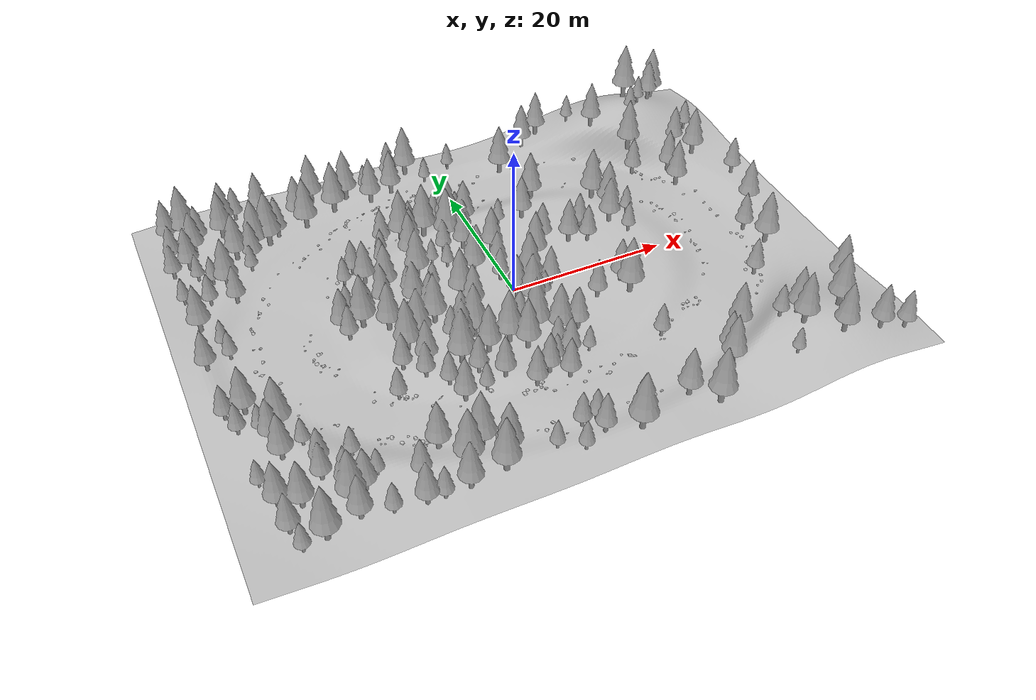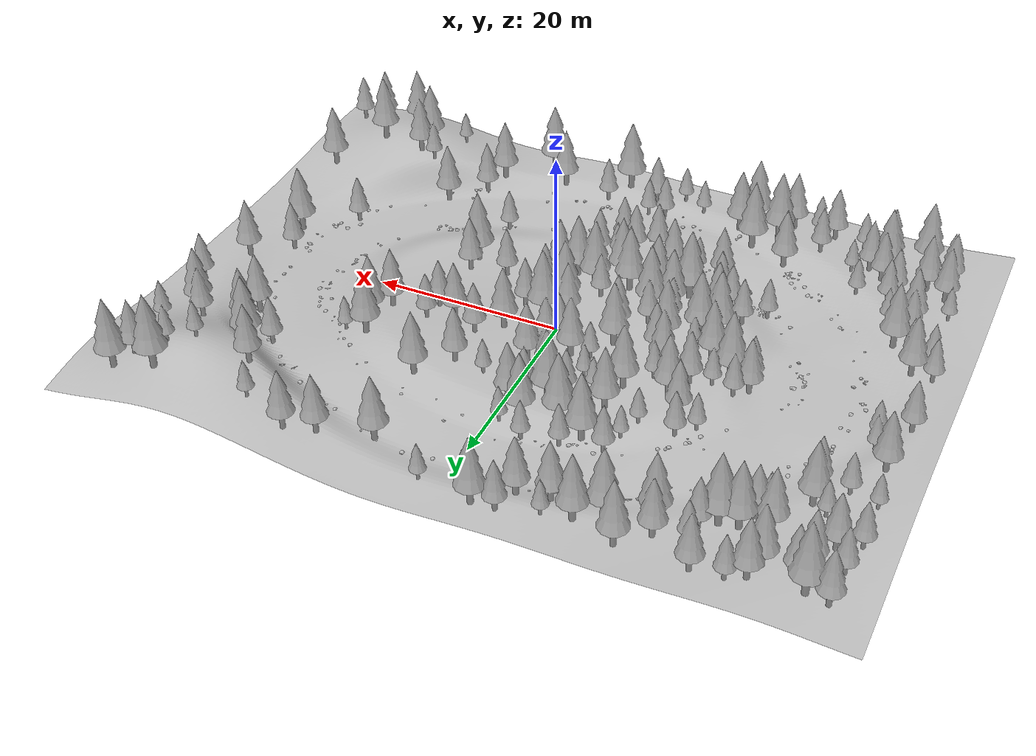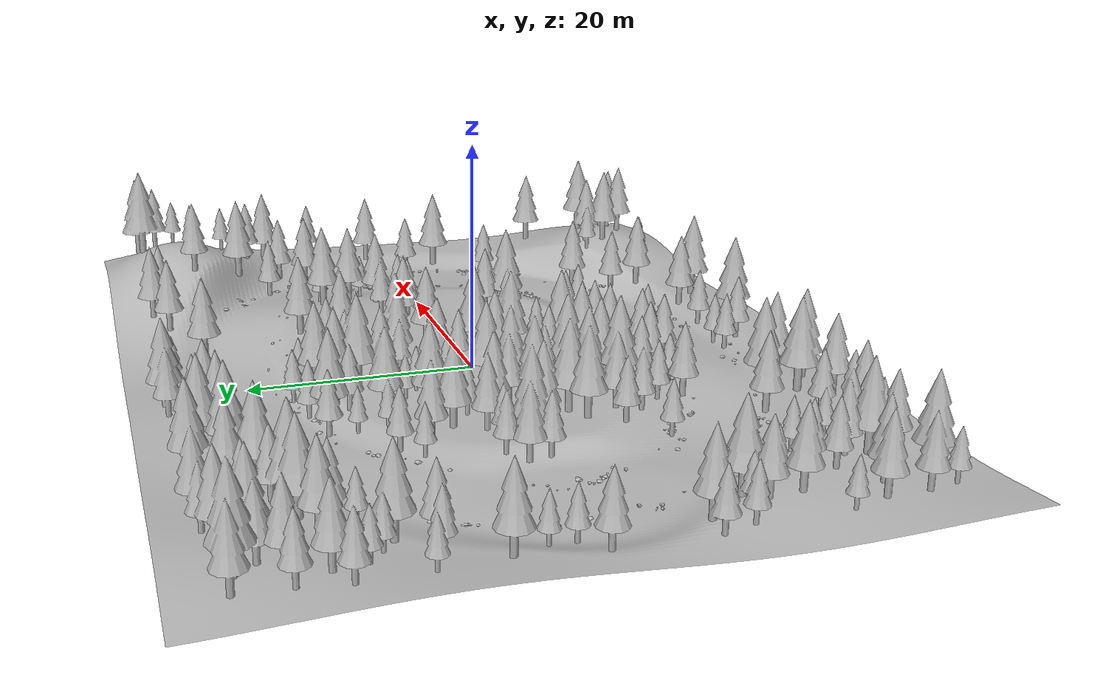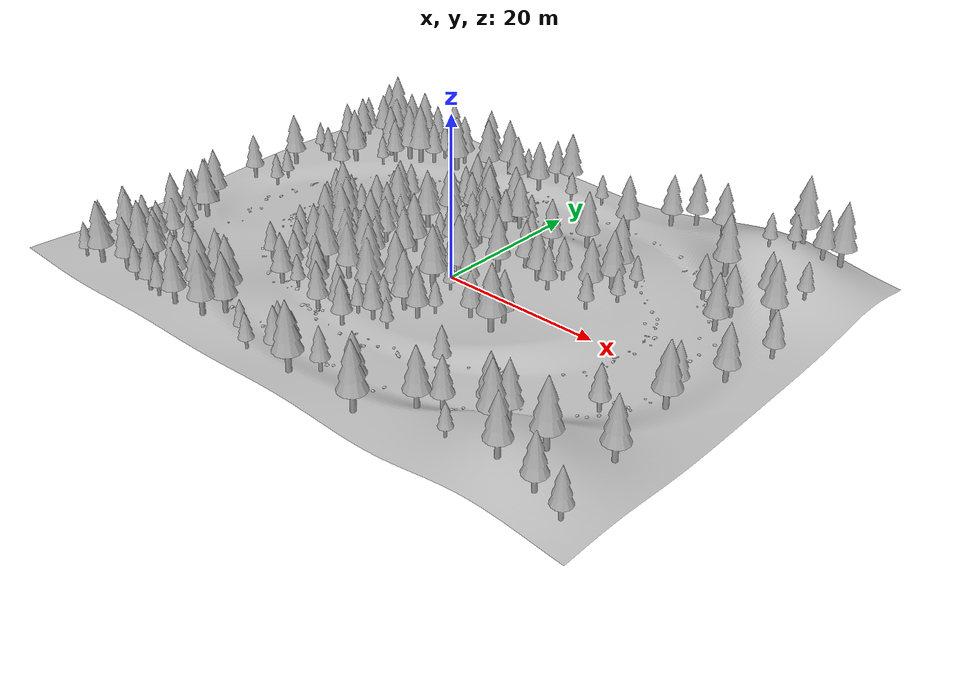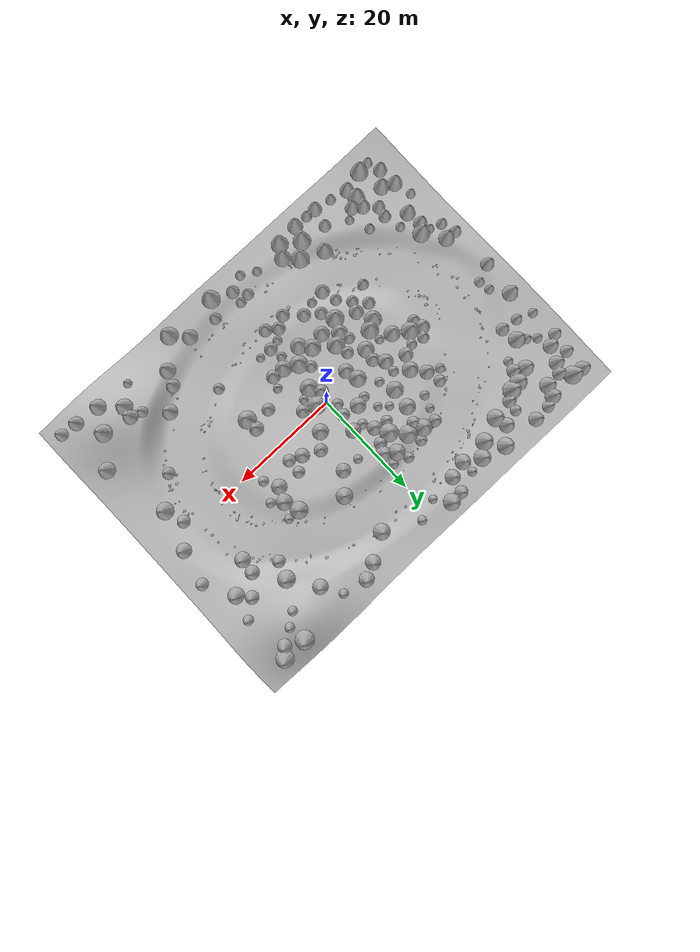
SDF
<sdf version="1.9">
 <world name="nomad_forest">
  <model name="terrain">
   <static>true</static>
   <link name="link">
    <visual name="visual">
     <geometry><mesh><uri>../assets/geometry/terrain.obj</uri><scale>1 1 1</scale></mesh></geometry>
    </visual>
    <collision name="rock">
     <geometry><mesh><uri>../assets/geometry/terrain.obj</uri><scale>1 1 1</scale></mesh></geometry>
    </collision>
   </link>
  </model>
  <model name="tree_007">
   <static>true</static>
   <pose>-6.293588800439682 13.55242502400182 0.8007505266098273 0 0 0.8162940006053361</pose>
   <link name="link">
    <visual name="visual">
     <geometry>
      <mesh>
       <uri>../assets/models/pine_tree.obj</uri>
       <scale>1.7989688896494025 1.7989688896494025 1.7989688896494025</scale>
      </mesh>
     </geometry>
    </visual>
    <collision name="trunk">
     <pose>0 0 2.8783502234390443 0 0 0</pose>
     <geometry>
      <cylinder><radius>0.35979377792988054</radius><length>5.756700446878089</length></cylinder>
     </geometry>
    </collision>
   </link>
  </model>
  <model name="tree_025">
   <static>true</static>
   <pose>-13.276341670110689 -11.89721545183179 0.7928453746427766 0 0 3.922718837163446</pose>
   <link name="link">
    <visual name="visual">
     <geometry>
      <mesh>
       <uri>../assets/models/pine_tree.obj</uri>
       <scale>1.1458944786385494 1.1458944786385494 1.1458944786385494</scale>
      </mesh>
     </geometry>
    </visual>
    <collision name="trunk">
     <pose>0 0 1.833431165821679 0 0 0</pose>
     <geometry>
      <cylinder><radius>0.22917889572770989</radius><length>3.666862331643358</length></cylinder>
     </geometry>
    </collision>
   </link>
  </model>
  <model name="tree_026">
   <static>true</static>
   <pose>-17.65965859949798 -19.472591499583118 0.47760870097271657 0 0 1.5537920347137826</pose>
   <link name="link">
    <visual name="visual">
     <geometry>
      <mesh>
       <uri>../assets/models/pine_tree.obj</uri>
       <scale>1.55673858618915 1.55673858618915 1.55673858618915</scale>
      </mesh>
     </geometry>
    </visual>
    <collision name="trunk">
     <pose>0 0 2.4907817379026405 0 0 0</pose>
     <geometry>
      <cylinder><radius>0.31134771723783006</radius><length>4.981563475805281</length></cylinder>
     </geometry>
    </collision>
   </link>
  </model>
  <model name="tree_030">
   <static>true</static>
   <pose>-6.838054801052387 24.097928054166218 0.6409375628328468 0 0 1.8420546594271203</pose>
   <link name="link">
    <visual name="visual">
     <geometry>
      <mesh>
       <uri>../assets/models/pine_tree.obj</uri>
       <scale>1.5101867661153476 1.5101867661153476 1.5101867661153476</scale>
      </mesh>
     </geometry>
    </visual>
    <collision name="trunk">
     <pose>0 0 2.4162988257845566 0 0 0</pose>
     <geometry>
      <cylinder><radius>0.30203735322306957</radius><length>4.832597651569113</length></cylinder>
     </geometry>
    </collision>
   </link>
  </model>
  <model name="tree_035">
   <static>true</static>
   <pose>-0.6944197450645646 -16.28772859136997 0.6846292504664656 0 0 5.097573754092246</pose>
   <link name="link">
    <visual name="visual">
     <geometry>
      <mesh>
       <uri>../assets/models/pine_tree.obj</uri>
       <scale>1.31694152696172 1.31694152696172 1.31694152696172</scale>
      </mesh>
     </geometry>
    </visual>
    <collision name="trunk">
     <pose>0 0 2.107106443138752 0 0 0</pose>
     <geometry><cylinder><radius>0.263388305392344</radius><length>4.214212886277504</length></cylinder></geometry>
    </collision>
   </link>
  </model>
  <model name="tree_039">
   <static>true</static>
   <pose>-2.5717278783547712 -14.939464476773919 0.9371561032422369 0 0 5.153898931738391</pose>
   <link name="link">
    <visual name="visual">
     <geometry>
      <mesh>
       <uri>../assets/models/pine_tree.obj</uri>
       <scale>1.3302403800585585 1.3302403800585585 1.3302403800585585</scale>
      </mesh>
     </geometry>
    </visual>
    <collision name="trunk">
     <pose>0 0 2.1283846080936937 0 0 0</pose>
     <geometry>
      <cylinder><radius>0.2660480760117117</radius><length>4.256769216187387</length></cylinder>
     </geometry>
    </collision>
   </link>
  </model>
  <model name="tree_040">
   <static>true</static>
   <pose>-1.1061359489396452 -25.091046535095707 0.8661596419446858 0 0 3.356134354959896</pose>
   <link name="link">
    <visual name="visual">
     <geometry>
      <mesh>
       <uri>../assets/models/pine_tree.obj</uri>
       <scale>1.2975089270482345 1.2975089270482345 1.2975089270482345</scale>
      </mesh>
     </geometry>
    </visual>
    <collision name="trunk">
     <pose>0 0 2.0760142832771753 0 0 0</pose>
     <geometry>
      <cylinder><radius>0.2595017854096469</radius><length>4.152028566554351</length></cylinder>
     </geometry>
    </collision>
   </link>
  </model>
  <model name="tree_047">
   <static>true</static>
   <pose>-13.536181052587096 -21.21866772276849 0.7080946075535787 0 0 3.372255730874749</pose>
   <link name="link">
    <visual name="visual">
     <geometry>
      <mesh>
       <uri>../assets/models/pine_tree.obj</uri>
       <scale>1.8033204049654459 1.8033204049654459 1.8033204049654459</scale>
      </mesh>
     </geometry>
    </visual>
    <collision name="trunk">
     <pose>0 0 2.8853126479447138 0 0 0</pose>
     <geometry>
      <cylinder><radius>0.3606640809930892</radius><length>5.7706252958894275</length></cylinder>
     </geometry>
    </collision>
   </link>
  </model>
  <model name="tree_051">
   <static>true</static>
   <pose>25.248967756138725 17.21050427596017 2.7728254936335675 0 0 4.054797229250412</pose>
   <link name="link">
    <visual name="visual">
     <geometry>
      <mesh>
       <uri>../assets/models/pine_tree.obj</uri>
       <scale>1.7249098421022357 1.7249098421022357 1.7249098421022357</scale>
      </mesh>
     </geometry>
    </visual>
    <collision name="trunk">
     <pose>0 0 2.759855747363577 0 0 0</pose>
     <geometry>
      <cylinder><radius>0.34498196842044715</radius><length>5.519711494727154</length></cylinder>
     </geometry>
    </collision>
   </link>
  </model>
  <model name="tree_065">
   <static>true</static>
   <pose>24.457651218509476 14.278219807285602 0.7009766329042418 0 0 5.3257457272270825</pose>
   <link name="link">
    <visual name="visual">
     <geometry>
      <mesh>
       <uri>../assets/models/pine_tree.obj</uri>
       <scale>1.2717046956988256 1.2717046956988256 1.2717046956988256</scale>
      </mesh>
     </geometry>
    </visual>
    <collision name="trunk">
     <pose>0 0 2.034727513118121 0 0 0</pose>
     <geometry>
      <cylinder><radius>0.25434093913976513</radius><length>4.069455026236242</length></cylinder>
     </geometry>
    </collision>
   </link>
  </model>
  <model name="tree_069">
   <static>true</static>
   <pose>-1.1114009333897954 15.636129962233149 0.5721477040604617 0 0 3.1060984069651902</pose>
   <link name="link">
    <visual name="visual">
     <geometry>
      <mesh>
       <uri>../assets/models/pine_tree.obj</uri>
       <scale>0.9391842858547345 0.9391842858547345 0.9391842858547345</scale>
      </mesh>
     </geometry>
    </visual>
    <collision name="trunk">
     <pose>0 0 1.5026948573675751 0 0 0</pose>
     <geometry>
      <cylinder><radius>0.1878368571709469</radius><length>3.0053897147351503</length></cylinder>
     </geometry>
    </collision>
   </link>
  </model>
  <model name="tree_072">
   <static>true</static>
   <pose>-16.770473143734264 10.652227281919778 0.36253165502038964 0 0 3.325448024082017</pose>
   <link name="link">
    <visual name="visual">
     <geometry>
      <mesh>
       <uri>../assets/models/pine_tree.obj</uri>
       <scale>1.1987599998118583 1.1987599998118583 1.1987599998118583</scale>
      </mesh>
     </geometry>
    </visual>
    <collision name="trunk">
     <pose>0 0 1.9180159996989734 0 0 0</pose>
     <geometry>
      <cylinder><radius>0.23975199996237168</radius><length>3.836031999397947</length></cylinder>
     </geometry>
    </collision>
   </link>
  </model>
  <model name="tree_075">
   <static>true</static>
   <pose>28.2225630124111 -9.554475139353482 -0.1421955524333917 0 0 5.602045413154341</pose>
   <link name="link">
    <visual name="visual">
     <geometry>
      <mesh>
       <uri>../assets/models/pine_tree.obj</uri>
       <scale>1.2480439982903286 1.2480439982903286 1.2480439982903286</scale>
      </mesh>
     </geometry>
    </visual>
    <collision name="trunk">
     <pose>0 0 1.9968703972645259 0 0 0</pose>
     <geometry>
      <cylinder><radius>0.24960879965806573</radius><length>3.9937407945290517</length></cylinder>
     </geometry>
    </collision>
   </link>
  </model>
  <model name="tree_077">
   <static>true</static>
   <pose>-18.361296366333363 9.103025834376098 0.39481014141068205 0 0 3.0501125574067327</pose>
   <link name="link">
    <visual name="visual">
     <geometry>
      <mesh>
       <uri>../assets/models/pine_tree.obj</uri>
       <scale>0.9926797807486402 0.9926797807486402 0.9926797807486402</scale>
      </mesh>
     </geometry>
    </visual>
    <collision name="trunk">
     <pose>0 0 1.5882876491978244 0 0 0</pose>
     <geometry>
      <cylinder><radius>0.19853595614972805</radius><length>3.176575298395649</length></cylinder>
     </geometry>
    </collision>
   </link>
  </model>
  <model name="tree_078">
   <static>true</static>
   <pose>-9.900320157292139 -14.401477858635333 0.8857124431410559 0 0 0.6427639457512218</pose>
   <link name="link">
    <visual name="visual">
     <geometry>
      <mesh>
       <uri>../assets/models/pine_tree.obj</uri>
       <scale>0.952438705476013 0.952438705476013 0.952438705476013</scale>
      </mesh>
     </geometry>
    </visual>
    <collision name="trunk">
     <pose>0 0 1.523901928761621 0 0 0</pose>
     <geometry>
      <cylinder><radius>0.1904877410952026</radius><length>3.047803857523242</length></cylinder>
     </geometry>
    </collision>
   </link>
  </model>
  <model name="tree_080">
   <static>true</static>
   <pose>-0.9724898220835385 -22.8911420694354 0.48623917429165425 0 0 2.4140685081277065</pose>
   <link name="link">
    <visual name="visual">
     <geometry>
      <mesh>
       <uri>../assets/models/pine_tree.obj</uri>
       <scale>1.0421492229770055 1.0421492229770055 1.0421492229770055</scale>
      </mesh>
     </geometry>
    </visual>
    <collision name="trunk">
     <pose>0 0 1.667438756763209 0 0 0</pose>
     <geometry>
      <cylinder><radius>0.20842984459540112</radius><length>3.334877513526418</length></cylinder>
     </geometry>
    </collision>
   </link>
  </model>
  <model name="tree_094">
   <static>true</static>
   <pose>-2.7662138534195293 14.512765500442583 0.8914661388534235 0 0 5.401350426669341</pose>
   <link name="link">
    <visual name="visual">
     <geometry>
      <mesh>
       <uri>../assets/models/pine_tree.obj</uri>
       <scale>1.6666037909532645 1.6666037909532645 1.6666037909532645</scale>
      </mesh>
     </geometry>
    </visual>
    <collision name="trunk">
     <pose>0 0 2.6665660655252235 0 0 0</pose>
     <geometry>
      <cylinder><radius>0.33332075819065293</radius><length>5.333132131050447</length></cylinder>
     </geometry>
    </collision>
   </link>
  </model>
  <model name="tree_100">
   <static>true</static>
   <pose>-2.8213500491230334 -23.10175073394997 0.5316661522117653 0 0 2.9509796798564474</pose>
   <link name="link">
    <visual name="visual">
     <geometry>
      <mesh>
       <uri>../assets/models/pine_tree.obj</uri>
       <scale>1.1534133446143469 1.1534133446143469 1.1534133446143469</scale>
      </mesh>
     </geometry>
    </visual>
    <collision name="trunk">
     <pose>0 0 1.845461351382955 0 0 0</pose>
     <geometry>
      <cylinder><radius>0.23068266892286937</radius><length>3.69092270276591</length></cylinder>
     </geometry>
    </collision>
   </link>
  </model>
  <model name="tree_104">
   <static>true</static>
   <pose>28.751849869676818 9.924569714537888 0.43422264244355135 0 0 3.1851830915829193</pose>
   <link name="link">
    <visual name="visual">
     <geometry>
      <mesh>
       <uri>../assets/models/pine_tree.obj</uri>
       <scale>1.5669524513801418 1.5669524513801418 1.5669524513801418</scale>
      </mesh>
     </geometry>
    </visual>
    <collision name="trunk">
     <pose>0 0 2.507123922208227 0 0 0</pose>
     <geometry>
      <cylinder><radius>0.3133904902760284</radius><length>5.014247844416454</length></cylinder>
     </geometry>
    </collision>
   </link>
  </model>
  <model name="tree_107">
   <static>true</static>
   <pose>17.496365396079497 -20.101052250353064 0.39404402331313226 0 0 1.1338845751314337</pose>
   <link name="link">
    <visual name="visual">
     <geometry>
      <mesh>
       <uri>../assets/models/pine_tree.obj</uri>
       <scale>1.3843335435280517 1.3843335435280517 1.3843335435280517</scale>
      </mesh>
     </geometry>
    </visual>
    <collision name="trunk">
     <pose>0 0 2.214933669644883 0 0 0</pose>
     <geometry>
      <cylinder><radius>0.27686670870561036</radius><length>4.429867339289766</length></cylinder>
     </geometry>
    </collision>
   </link>
  </model>
  <model name="tree_108">
   <static>true</static>
   <pose>-4.673912379977352 -16.11857310948409 0.9173448478450703 0 0 4.205197216302796</pose>
   <link name="link">
    <visual name="visual">
     <geometry>
      <mesh>
       <uri>../assets/models/pine_tree.obj</uri>
       <scale>1.3300202291052394 1.3300202291052394 1.3300202291052394</scale>
      </mesh>
     </geometry>
    </visual>
    <collision name="trunk">
     <pose>0 0 2.1280323665683833 0 0 0</pose>
     <geometry>
      <cylinder><radius>0.2660040458210479</radius><length>4.256064733136767</length></cylinder>
     </geometry>
    </collision>
   </link>
  </model>
  <model name="tree_109">
   <static>true</static>
   <pose>16.350984833224167 -22.434822562332542 1.2152132815893821 0 0 2.2077109779601747</pose>
   <link name="link">
    <visual name="visual">
     <geometry>
      <mesh>
       <uri>../assets/models/pine_tree.obj</uri>
       <scale>1.5861974616751477 1.5861974616751477 1.5861974616751477</scale>
      </mesh>
     </geometry>
    </visual>
    <collision name="trunk">
     <pose>0 0 2.5379159386802366 0 0 0</pose>
     <geometry>
      <cylinder><radius>0.31723949233502957</radius><length>5.075831877360473</length></cylinder>
     </geometry>
    </collision>
   </link>
  </model>
  <model name="tree_114">
   <static>true</static>
   <pose>-12.301881939422575 12.945647165655316 0.3383598516213291 0 0 2.4276722496816645</pose>
   <link name="link">
    <visual name="visual">
     <geometry>
      <mesh>
       <uri>../assets/models/pine_tree.obj</uri>
       <scale>0.8754748947221667 0.8754748947221667 0.8754748947221667</scale>
      </mesh>
     </geometry>
    </visual>
    <collision name="trunk">
     <pose>0 0 1.4007598315554668 0 0 0</pose>
     <geometry>
      <cylinder><radius>0.17509497894443335</radius><length>2.8015196631109336</length></cylinder>
     </geometry>
    </collision>
   </link>
  </model>
  <model name="tree_116">
   <static>true</static>
   <pose>18.34391992662364 10.233785066652338 1.522372054525186 0 0 1.4962436887757913</pose>
   <link name="link">
    <visual name="visual">
     <geometry>
      <mesh>
       <uri>../assets/models/pine_tree.obj</uri>
       <scale>0.9015878346819907 0.9015878346819907 0.9015878346819907</scale>
      </mesh>
     </geometry>
    </visual>
    <collision name="trunk">
     <pose>0 0 1.442540535491185 0 0 0</pose>
     <geometry>
      <cylinder><radius>0.18031756693639814</radius><length>2.88508107098237</length></cylinder>
     </geometry>
    </collision>
   </link>
  </model>
  <model name="tree_118">
   <static>true</static>
   <pose>4.214497332983825 -23.755848658581105 0.5907177686552141 0 0 2.435933843547309</pose>
   <link name="link">
    <visual name="visual">
     <geometry>
      <mesh>
       <uri>../assets/models/pine_tree.obj</uri>
       <scale>1.1882747736186925 1.1882747736186925 1.1882747736186925</scale>
      </mesh>
     </geometry>
    </visual>
    <collision name="trunk">
     <pose>0 0 1.9012396377899081 0 0 0</pose>
     <geometry>
      <cylinder><radius>0.23765495472373852</radius><length>3.8024792755798162</length></cylinder>
     </geometry>
    </collision>
   </link>
  </model>
  <model name="tree_120">
   <static>true</static>
   <pose>-9.919427201797852 23.42828917748814 0.5233286322261401 0 0 5.089609233991469</pose>
   <link name="link">
    <visual name="visual">
     <geometry>
      <mesh>
       <uri>../assets/models/pine_tree.obj</uri>
       <scale>1.550121981894094 1.550121981894094 1.550121981894094</scale>
      </mesh>
     </geometry>
    </visual>
    <collision name="trunk">
     <pose>0 0 2.4801951710305503 0 0 0</pose>
     <geometry>
      <cylinder><radius>0.3100243963788188</radius><length>4.960390342061101</length></cylinder>
     </geometry>
    </collision>
   </link>
  </model>
  <model name="tree_124">
   <static>true</static>
   <pose>12.074988859806325 -14.42589918851727 0.11758999165868661 0 0 3.5026901283701157</pose>
   <link name="link">
    <visual name="visual">
     <geometry>
      <mesh>
       <uri>../assets/models/pine_tree.obj</uri>
       <scale>1.1078354053719548 1.1078354053719548 1.1078354053719548</scale>
      </mesh>
     </geometry>
    </visual>
    <collision name="trunk">
     <pose>0 0 1.7725366485951277 0 0 0</pose>
     <geometry>
      <cylinder><radius>0.22156708107439096</radius><length>3.5450732971902554</length></cylinder>
     </geometry>
    </collision>
   </link>
  </model>
  <model name="tree_139">
   <static>true</static>
   <pose>-1.875117931666864 24.60243727265535 0.5796699866888116 0 0 0.02228610749726361</pose>
   <link name="link">
    <visual name="visual">
     <geometry>
      <mesh>
       <uri>../assets/models/pine_tree.obj</uri>
       <scale>0.8754748954382711 0.8754748954382711 0.8754748954382711</scale>
      </mesh>
     </geometry>
    </visual>
    <collision name="trunk">
     <pose>0 0 1.4007598327012338 0 0 0</pose>
     <geometry>
      <cylinder><radius>0.17509497908765423</radius><length>2.8015196654024677</length></cylinder>
     </geometry>
    </collision>
   </link>
  </model>
  <model name="tree_144">
   <static>true</static>
   <pose>-7.383037681972716 15.932795061696218 0.008968379253992756 0 0 2.983480610730356</pose>
   <link name="link">
    <visual name="visual">
     <geometry>
      <mesh>
       <uri>../assets/models/pine_tree.obj</uri>
       <scale>1.1275508866314268 1.1275508866314268 1.1275508866314268</scale>
      </mesh>
     </geometry>
    </visual>
    <collision name="trunk">
     <pose>0 0 1.804081418610283 0 0 0</pose>
     <geometry>
      <cylinder><radius>0.22551017732628537</radius><length>3.608162837220566</length></cylinder>
     </geometry>
    </collision>
   </link>
  </model>
  <model name="tree_148">
   <static>true</static>
   <pose>-7.343302468665485 -13.640190189029394 1.1682619906584892 0 0 1.9735704425010583</pose>
   <link name="link">
    <visual name="visual">
     <geometry>
      <mesh>
       <uri>../assets/models/pine_tree.obj</uri>
       <scale>1.3548106065326508 1.3548106065326508 1.3548106065326508</scale>
      </mesh>
     </geometry>
    </visual>
    <collision name="trunk">
     <pose>0 0 2.1676969704522415 0 0 0</pose>
     <geometry>
      <cylinder><radius>0.2709621213065302</radius><length>4.335393940904483</length></cylinder>
     </geometry>
    </collision>
   </link>
  </model>
  <model name="tree_151">
   <static>true</static>
   <pose>-11.380744848688852 -23.404847185497154 0.9872489706387149 0 0 3.581989815266369</pose>
   <link name="link">
    <visual name="visual">
     <geometry>
      <mesh>
       <uri>../assets/models/pine_tree.obj</uri>
       <scale>1.6466060610825708 1.6466060610825708 1.6466060610825708</scale>
      </mesh>
     </geometry>
    </visual>
    <collision name="trunk">
     <pose>0 0 2.6345696977321134 0 0 0</pose>
     <geometry>
      <cylinder><radius>0.32932121221651417</radius><length>5.269139395464227</length></cylinder>
     </geometry>
    </collision>
   </link>
  </model>
  <model name="tree_160">
   <static>true</static>
   <pose>-9.023421914254314 14.543629849972874 0.23866772326132862 0 0 0.6455605696202059</pose>
   <link name="link">
    <visual name="visual">
     <geometry>
      <mesh>
       <uri>../assets/models/pine_tree.obj</uri>
       <scale>1.76155614567804 1.76155614567804 1.76155614567804</scale>
      </mesh>
     </geometry>
    </visual>
    <collision name="trunk">
     <pose>0 0 2.8184898330848642 0 0 0</pose>
     <geometry>
      <cylinder><radius>0.35231122913560803</radius><length>5.6369796661697285</length></cylinder>
     </geometry>
    </collision>
   </link>
  </model>
  <model name="tree_166">
   <static>true</static>
   <pose>-6.688955291213464 -24.984804589735102 0.9258627684968768 0 0 4.110673129153881</pose>
   <link name="link">
    <visual name="visual">
     <geometry>
      <mesh>
       <uri>../assets/models/pine_tree.obj</uri>
       <scale>0.9360189261638309 0.9360189261638309 0.9360189261638309</scale>
      </mesh>
     </geometry>
    </visual>
    <collision name="trunk">
     <pose>0 0 1.4976302818621294 0 0 0</pose>
     <geometry>
      <cylinder><radius>0.18720378523276618</radius><length>2.995260563724259</length></cylinder>
     </geometry>
    </collision>
   </link>
  </model>
  <model name="tree_167">
   <static>true</static>
   <pose>15.996673173253711 10.313177564823377 1.9722138794428763 0 0 4.080049000838009</pose>
   <link name="link">
    <visual name="visual">
     <geometry>
      <mesh>
       <uri>../assets/models/pine_tree.obj</uri>
       <scale>1.7058053684853944 1.7058053684853944 1.7058053684853944</scale>
      </mesh>
     </geometry>
    </visual>
    <collision name="trunk">
     <pose>0 0 2.7292885895766315 0 0 0</pose>
     <geometry>
      <cylinder><radius>0.34116107369707893</radius><length>5.458577179153263</length></cylinder>
     </geometry>
    </collision>
   </link>
  </model>
  <model name="tree_173">
   <static>true</static>
   <pose>-12.502700017331392 -14.51735591329966 0.5137186061934924 0 0 5.659660308240993</pose>
   <link name="link">
    <visual name="visual">
     <geometry>
      <mesh>
       <uri>../assets/models/pine_tree.obj</uri>
       <scale>1.433883082825281 1.433883082825281 1.433883082825281</scale>
      </mesh>
     </geometry>
    </visual>
    <collision name="trunk">
     <pose>0 0 2.2942129325204497 0 0 0</pose>
     <geometry>
      <cylinder><radius>0.2867766165650562</radius><length>4.588425865040899</length></cylinder>
     </geometry>
    </collision>
   </link>
  </model>
  <model name="tree_180">
   <static>true</static>
   <pose>-18.803474803390625 -10.76345794323688 -0.11286317550703899 0 0 3.164573356038388</pose>
   <link name="link">
    <visual name="visual">
     <geometry>
      <mesh>
       <uri>../assets/models/pine_tree.obj</uri>
       <scale>1.0933875929630017 1.0933875929630017 1.0933875929630017</scale>
      </mesh>
     </geometry>
    </visual>
    <collision name="trunk">
     <pose>0 0 1.7494201487408028 0 0 0</pose>
     <geometry>
      <cylinder><radius>0.21867751859260035</radius><length>3.4988402974816055</length></cylinder>
     </geometry>
    </collision>
   </link>
  </model>
  <model name="tree_186">
   <static>true</static>
   <pose>-11.443931928611256 15.082205997048398 -0.008963105897041499 0 0 2.517811864487486</pose>
   <link name="link">
    <visual name="visual">
     <geometry>
      <mesh>
       <uri>../assets/models/pine_tree.obj</uri>
       <scale>1.2527596146383495 1.2527596146383495 1.2527596146383495</scale>
      </mesh>
     </geometry>
    </visual>
    <collision name="trunk">
     <pose>0 0 2.0044153834213594 0 0 0</pose>
     <geometry>
      <cylinder><radius>0.2505519229276699</radius><length>4.008830766842719</length></cylinder>
     </geometry>
    </collision>
   </link>
  </model>
  <model name="tree_188">
   <static>true</static>
   <pose>-14.954044696089333 23.382359815205568 0.6086177892012964 0 0 4.675497153707997</pose>
   <link name="link">
    <visual name="visual">
     <geometry>
      <mesh>
       <uri>../assets/models/pine_tree.obj</uri>
       <scale>1.7499453065696076 1.7499453065696076 1.7499453065696076</scale>
      </mesh>
     </geometry>
    </visual>
    <collision name="trunk">
     <pose>0 0 2.7999124905113724 0 0 0</pose>
     <geometry>
      <cylinder><radius>0.34998906131392155</radius><length>5.599824981022745</length></cylinder>
     </geometry>
    </collision>
   </link>
  </model>
  <model name="tree_190">
   <static>true</static>
   <pose>31.8405356845078 -1.7202492389860495 -0.016109725992784388 0 0 1.1564644276489</pose>
   <link name="link">
    <visual name="visual">
     <geometry>
      <mesh>
       <uri>../assets/models/pine_tree.obj</uri>
       <scale>1.3044044761263467 1.3044044761263467 1.3044044761263467</scale>
      </mesh>
     </geometry>
    </visual>
    <collision name="trunk">
     <pose>0 0 2.087047161802155 0 0 0</pose>
     <geometry>
      <cylinder><radius>0.26088089522526936</radius><length>4.17409432360431</length></cylinder>
     </geometry>
    </collision>
   </link>
  </model>
  <model name="tree_207">
   <static>true</static>
   <pose>8.32709815310934 22.546641655049065 0.41832688693377185 0 0 2.330838220396966</pose>
   <link name="link">
    <visual name="visual">
     <geometry>
      <mesh>
       <uri>../assets/models/pine_tree.obj</uri>
       <scale>1.6633031322146081 1.6633031322146081 1.6633031322146081</scale>
      </mesh>
     </geometry>
    </visual>
    <collision name="trunk">
     <pose>0 0 2.6612850115433733 0 0 0</pose>
     <geometry>
      <cylinder><radius>0.33266062644292166</radius><length>5.3225700230867465</length></cylinder>
     </geometry>
    </collision>
   </link>
  </model>
  <model name="tree_212">
   <static>true</static>
   <pose>20.91017431863458 -17.100823790786336 0.09512804816273977 0 0 4.113894821890732</pose>
   <link name="link">
    <visual name="visual">
     <geometry>
      <mesh>
       <uri>../assets/models/pine_tree.obj</uri>
       <scale>1.5663543849134323 1.5663543849134323 1.5663543849134323</scale>
      </mesh>
     </geometry>
    </visual>
    <collision name="trunk">
     <pose>0 0 2.5061670158614917 0 0 0</pose>
     <geometry>
      <cylinder><radius>0.31327087698268646</radius><length>5.012334031722983</length></cylinder>
     </geometry>
    </collision>
   </link>
  </model>
  <model name="tree_214">
   <static>true</static>
   <pose>8.819314517258405 13.799476779055496 1.692432598073731 0 0 5.978505828718574</pose>
   <link name="link">
    <visual name="visual">
     <geometry>
      <mesh>
       <uri>../assets/models/pine_tree.obj</uri>
       <scale>1.6264795098925968 1.6264795098925968 1.6264795098925968</scale>
      </mesh>
     </geometry>
    </visual>
    <collision name="trunk">
     <pose>0 0 2.602367215828155 0 0 0</pose>
     <geometry><cylinder><radius>0.3252959019785194</radius><length>5.20473443165631</length></cylinder></geometry>
    </collision>
   </link>
  </model>
  <model name="tree_218">
   <static>true</static>
   <pose>-3.773850808889854 16.59511993901492 0.05825359903503507 0 0 4.163018128181159</pose>
   <link name="link">
    <visual name="visual">
     <geometry>
      <mesh>
       <uri>../assets/models/pine_tree.obj</uri>
       <scale>1.046191044957323 1.046191044957323 1.046191044957323</scale>
      </mesh>
     </geometry>
    </visual>
    <collision name="trunk">
     <pose>0 0 1.673905671931717 0 0 0</pose>
     <geometry>
      <cylinder><radius>0.2092382089914646</radius><length>3.347811343863434</length></cylinder>
     </geometry>
    </collision>
   </link>
  </model>
  <model name="tree_222">
   <static>true</static>
   <pose>9.642139503347863 -24.252012349781797 0.8644734847168342 0 0 4.215997067286709</pose>
   <link name="link">
    <visual name="visual">
     <geometry>
      <mesh>
       <uri>../assets/models/pine_tree.obj</uri>
       <scale>1.5535251317288774 1.5535251317288774 1.5535251317288774</scale>
      </mesh>
     </geometry>
    </visual>
    <collision name="trunk">
     <pose>0 0 2.485640210766204 0 0 0</pose>
     <geometry>
      <cylinder><radius>0.3107050263457755</radius><length>4.971280421532408</length></cylinder>
     </geometry>
    </collision>
   </link>
  </model>
  <model name="tree_224">
   <static>true</static>
   <pose>28.96057189349102 12.569264350583062 1.0169912373486962 0 0 4.43867450526119</pose>
   <link name="link">
    <visual name="visual">
     <geometry>
      <mesh>
       <uri>../assets/models/pine_tree.obj</uri>
       <scale>1.4186999720574518 1.4186999720574518 1.4186999720574518</scale>
      </mesh>
     </geometry>
    </visual>
    <collision name="trunk">
     <pose>0 0 2.269919955291923 0 0 0</pose>
     <geometry>
      <cylinder><radius>0.2837399944114904</radius><length>4.539839910583846</length></cylinder>
     </geometry>
    </collision>
   </link>
  </model>
  <model name="tree_226">
   <static>true</static>
   <pose>32.84101195778523 -5.122997037509293 0.14348619201552976 0 0 0.7286880892265374</pose>
   <link name="link">
    <visual name="visual">
     <geometry>
      <mesh>
       <uri>../assets/models/pine_tree.obj</uri>
       <scale>1.7510344863135492 1.7510344863135492 1.7510344863135492</scale>
      </mesh>
     </geometry>
    </visual>
    <collision name="trunk">
     <pose>0 0 2.801655178101679 0 0 0</pose>
     <geometry>
      <cylinder><radius>0.35020689726270987</radius><length>5.603310356203358</length></cylinder>
     </geometry>
    </collision>
   </link>
  </model>
  <model name="tree_237">
   <static>true</static>
   <pose>1.974117297097301 25.915147243194895 0.6860214427760253 0 0 5.830199970201627</pose>
   <link name="link">
    <visual name="visual">
     <geometry>
      <mesh>
       <uri>../assets/models/pine_tree.obj</uri>
       <scale>0.9322856023826933 0.9322856023826933 0.9322856023826933</scale>
      </mesh>
     </geometry>
    </visual>
    <collision name="trunk">
     <pose>0 0 1.4916569638123094 0 0 0</pose>
     <geometry>
      <cylinder><radius>0.18645712047653867</radius><length>2.9833139276246188</length></cylinder>
     </geometry>
    </collision>
   </link>
  </model>
  <model name="forest_clusters">
   <static>true</static>
   <link name="link">
    <visual name="visual">
     <geometry><mesh><uri>../assets/geometry/forest_clusters.obj</uri><scale>1 1 1</scale></mesh></geometry>
    </visual>
   </link>
  </model>
  <model name="fallen_wood_and_stones">
   <static>true</static>
   <link name="link">
    <visual name="visual">
     <geometry><mesh><uri>../assets/geometry/roadside_details.obj</uri><scale>1 1 1</scale></mesh></geometry>
    </visual>
   </link>
  </model>
 </world>
</sdf>
